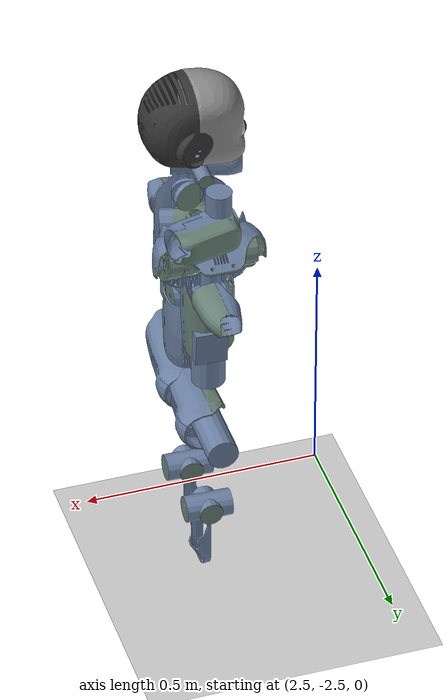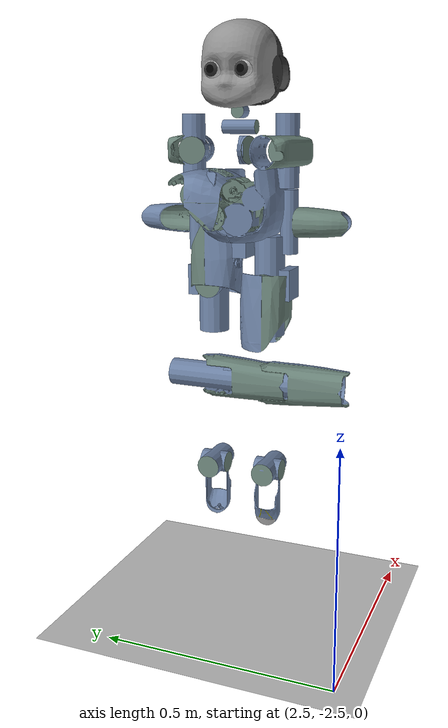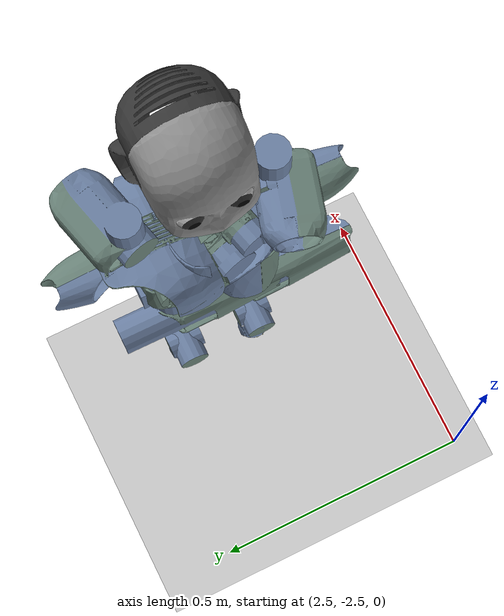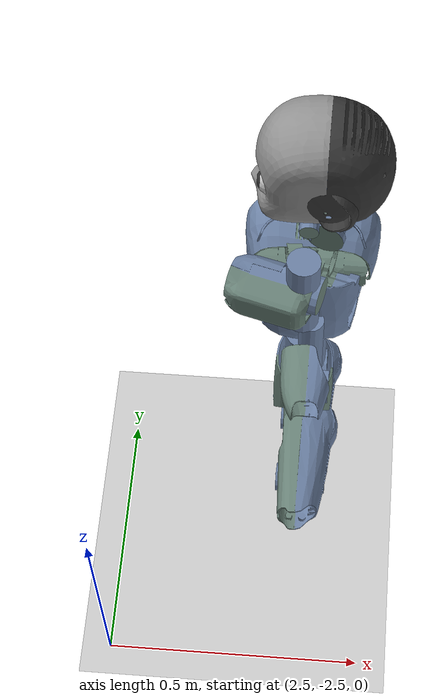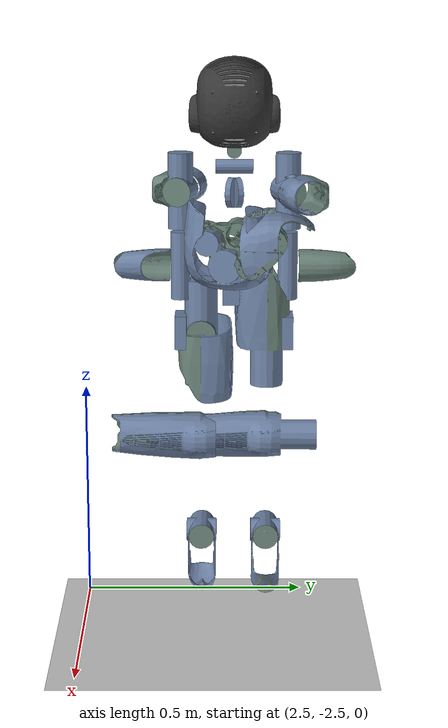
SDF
<sdf version="1.6">
 <world name="default">
  <model name="ground_plane">
   <static>1</static>
   <link name="link">
    <collision name="collision">
     <geometry><plane><normal>0 0 1</normal><size>100 100</size></plane></geometry>
     <surface><friction><ode><mu>100</mu><mu2>50</mu2></ode></friction></surface>
    </collision>
    <visual name="visual">
     <cast_shadows>0</cast_shadows>
     <geometry><plane><normal>0 0 1</normal><size>100 100</size></plane></geometry>
     <material>
      <script><uri>file://media/materials/scripts/gazebo.material</uri><name>Gazebo/Grey</name></script>
     </material>
    </visual>
   </link>
  </model>
  <model name="iCub_0">
   <pose>2.85996 -2.16202 0.840918 -2e-06 -0.008142 -0.01028</pose>
   <link name="root_link">
    <inertial>
     <mass>4.72</mass>
     <inertia><ixx>0.01</ixx><ixy>0</ixy><ixz>0</ixz><iyy>0.01</iyy><iyz>0</iyz><izz>0.01</izz></inertia>
    </inertial>
    <collision name="root_link_collision">
     <geometry>
      <mesh><scale>1 1 1</scale><uri>model://icub/meshes/collision/icub_simple_collision_root_link.dae</uri></mesh>
     </geometry>
    </collision>
    <visual name="root_link_visual">
     <geometry><mesh><scale>1 1 1</scale><uri>model://icub/meshes/visual/icub_root_link.dae</uri></mesh></geometry>
    </visual>
   </link>
   <link name="l_hip_1">
    <pose>0 -0.0681 -0.1199 3e-06 1.57079 3.14159</pose>
    <inertial>
     <pose>0 -0.0782 0 0 -0 0</pose>
     <mass>0.754</mass>
     <inertia>
      <ixx>0.01</ixx>
      <ixy>2.059e-06</ixy>
      <ixz>1.451e-06</ixz>
      <iyy>0.01</iyy>
      <iyz>1.545e-06</iyz>
      <izz>0.01</izz>
     </inertia>
    </inertial>
    <collision name="l_hip_1_collision">
     <pose>0 0 0 -0.785403 1.57079 -2.35619</pose>
     <geometry>
      <mesh><scale>1 1 1</scale><uri>model://icub/meshes/collision/icub_simple_collision_l_hip_1.dae</uri></mesh>
     </geometry>
    </collision>
    <visual name="l_hip_1_visual">
     <pose>0 0 0 -0.785403 1.57079 -2.35619</pose>
     <geometry><mesh><scale>1 1 1</scale><uri>model://icub/meshes/visual/icub_l_hip_1.dae</uri></mesh></geometry>
    </visual>
   </link>
   <joint name="l_hip_pitch" type="revolute">
    <child>l_hip_1</child>
    <parent>root_link</parent>
    <axis>
     <xyz>3e-06 1 0</xyz>
     <limit><lower>-0.767945</lower><upper>2.30383</upper><effort>84</effort><velocity>100</velocity></limit>
     <dynamics>
      <damping>1</damping>
      <friction>0</friction>
      <spring_reference>0</spring_reference>
      <spring_stiffness>0</spring_stiffness>
     </dynamics>
     <use_parent_model_frame>1</use_parent_model_frame>
    </axis>
   </joint>
   <link name="l_hip_2">
    <pose>0 -0.0681 -0.1199 3.14159 -7e-06 3.14159</pose>
    <inertial>
     <pose>0 0 0.03045 0 -0 0</pose>
     <mass>0.526</mass>
     <inertia>
      <ixx>0.01</ixx>
      <ixy>-7.4e-08</ixy>
      <ixz>1.0835e-05</ixz>
      <iyy>0.01</iyy>
      <iyz>-6.2e-08</iyz>
      <izz>0.01</izz>
     </inertia>
    </inertial>
    <collision name="l_hip_2_collision">
     <pose>0 0 0 0.785363 -1.57079 2.35623</pose>
     <geometry>
      <mesh><scale>1 1 1</scale><uri>model://icub/meshes/collision/icub_simple_collision_l_hip_2.dae</uri></mesh>
     </geometry>
    </collision>
    <visual name="l_hip_2_visual">
     <pose>0 0 0 0.785363 -1.57079 2.35623</pose>
     <geometry><mesh><scale>1 1 1</scale><uri>model://icub/meshes/visual/icub_l_hip_2.dae</uri></mesh></geometry>
    </visual>
   </link>
   <joint name="l_hip_roll" type="revolute">
    <child>l_hip_2</child>
    <parent>l_hip_1</parent>
    <axis>
     <xyz>-1 3e-06 7e-06</xyz>
     <limit><lower>-0.296706</lower><upper>2.07694</upper><effort>84</effort><velocity>100</velocity></limit>
     <dynamics>
      <damping>1</damping>
      <friction>0</friction>
      <spring_reference>0</spring_reference>
      <spring_stiffness>0</spring_stiffness>
     </dynamics>
     <use_parent_model_frame>1</use_parent_model_frame>
    </axis>
   </joint>
   <link name="l_hip_3">
    <pose>-0 -0.0681 -0.1864 3.14159 -7e-06 3.14159</pose>
    <inertial>
     <mass>0.1</mass>
     <inertia><ixx>0.01</ixx><ixy>0</ixy><ixz>0</ixz><iyy>0.01</iyy><iyz>0</iyz><izz>0.01</izz></inertia>
    </inertial>
   </link>
   <joint name="l_leg_ft_sensor" type="revolute">
    <child>l_hip_3</child>
    <parent>l_hip_2</parent>
    <axis>
     <xyz>0 0 0</xyz>
     <limit><lower>0</lower><upper>0</upper><effort>0</effort><velocity>0</velocity></limit>
     <dynamics><spring_reference>0</spring_reference><spring_stiffness>0</spring_stiffness></dynamics>
     <use_parent_model_frame>1</use_parent_model_frame>
    </axis>
    <sensor name="left_leg_ft" type="force_torque">
     <always_on>1</always_on>
     <update_rate>100</update_rate>
     <plugin name="left_leg_ft_plugin" filename="libgazebo_yarp_forcetorque.so">
      <yarpConfigurationFile>model://icub/conf/FT/gazebo_icub_left_leg_ft.ini</yarpConfigurationFile>
     </plugin>
    </sensor>
   </joint>
   <link name="l_upper_leg">
    <pose>0 -0.0681 -0.1199 1.57079 -7e-06 3.14159</pose>
    <inertial>
     <pose>0.00144 -0.15943 -0.00039 0 -0 0</pose>
     <mass>2.175</mass>
     <inertia>
      <ixx>0.01</ixx>
      <ixy>-6.726e-05</ixy>
      <ixz>2.267e-06</ixz>
      <iyy>0.01</iyy>
      <iyz>3.63726e-05</iyz>
      <izz>0.01</izz>
     </inertia>
    </inertial>
    <collision name="l_upper_leg_collision">
     <pose>0 0 0 -2.67797 1.57079 -1.10716</pose>
     <geometry>
      <mesh><scale>1 1 1</scale><uri>model://icub/meshes/collision/icub_simple_collision_l_thigh.dae</uri></mesh>
     </geometry>
    </collision>
    <visual name="l_upper_leg_visual">
     <pose>0 0 0 -2.67797 1.57079 -1.10716</pose>
     <geometry><mesh><scale>1 1 1</scale><uri>model://icub/meshes/visual/icub_l_thigh.dae</uri></mesh></geometry>
    </visual>
   </link>
   <joint name="l_hip_yaw" type="revolute">
    <child>l_upper_leg</child>
    <parent>l_hip_3</parent>
    <axis>
     <xyz>7e-06 -6e-06 1</xyz>
     <limit><lower>-1.37881</lower><upper>1.37881</upper><effort>40</effort><velocity>100</velocity></limit>
     <dynamics>
      <damping>1</damping>
      <friction>0</friction>
      <spring_reference>0</spring_reference>
      <spring_stiffness>0</spring_stiffness>
     </dynamics>
     <use_parent_model_frame>1</use_parent_model_frame>
    </axis>
   </joint>
   <link name="l_lower_leg">
    <pose>-2e-06 -0.068099 -0.3435 2.09198 -1.57078 -0.521189</pose>
    <inertial>
     <pose>-0.1071 0.00182 0.00211 0 -0 0</pose>
     <mass>1.264</mass>
     <inertia>
      <ixx>0.01</ixx>
      <ixy>-0.000185699</ixy>
      <ixz>-6.3147e-05</ixz>
      <iyy>0.01</iyy>
      <iyz>7.86e-07</iyz>
      <izz>0.01</izz>
     </inertia>
    </inertial>
    <collision name="l_lower_leg_collision">
     <pose>0 0 0 -3.14159 -0 1.5708</pose>
     <geometry>
      <mesh><scale>1 1 1</scale><uri>model://icub/meshes/collision/icub_simple_collision_l_shank.dae</uri></mesh>
     </geometry>
    </collision>
    <visual name="l_lower_leg_visual">
     <pose>0 0 0 -3.14159 -0 1.5708</pose>
     <geometry><mesh><scale>1 1 1</scale><uri>model://icub/meshes/visual/icub_l_shank.dae</uri></mesh></geometry>
    </visual>
   </link>
   <joint name="l_knee" type="revolute">
    <child>l_lower_leg</child>
    <parent>l_upper_leg</parent>
    <axis>
     <xyz>5e-06 1 6e-06</xyz>
     <limit><lower>-2.18166</lower><upper>0.401426</upper><effort>30</effort><velocity>100</velocity></limit>
     <dynamics>
      <damping>1</damping>
      <friction>0</friction>
      <spring_reference>0</spring_reference>
      <spring_stiffness>0</spring_stiffness>
     </dynamics>
     <use_parent_model_frame>1</use_parent_model_frame>
    </axis>
   </joint>
   <link name="l_ankle_1">
    <pose>-4e-06 -0.068097 -0.5565 0.52118 -1.57078 -0.521189</pose>
    <inertial>
     <pose>-0.0054 0.00163 0.0172 0 -0 0</pose>
     <mass>0.746</mass>
     <inertia>
      <ixx>0.01</ixx>
      <ixy>-7.081e-06</ixy>
      <ixz>4.1421e-05</ixz>
      <iyy>0.01</iyy>
      <iyz>2.0817e-05</iyz>
      <izz>0.01</izz>
     </inertia>
    </inertial>
    <collision name="l_ankle_1_collision">
     <pose>0 -0 0 1.5708 -0 0</pose>
     <geometry>
      <mesh><scale>1 1 1</scale><uri>model://icub/meshes/collision/icub_simple_collision_l_ankle_1.dae</uri></mesh>
     </geometry>
    </collision>
    <visual name="l_ankle_1_visual">
     <pose>0 -0 0 1.5708 -0 0</pose>
     <geometry><mesh><scale>1 1 1</scale><uri>model://icub/meshes/visual/icub_l_ankle_1.dae</uri></mesh></geometry>
    </visual>
   </link>
   <joint name="l_ankle_pitch" type="revolute">
    <child>l_ankle_1</child>
    <parent>l_lower_leg</parent>
    <axis>
     <xyz>-9e-06 -1 -6e-06</xyz>
     <limit><lower>-0.733038</lower><upper>0.366519</upper><effort>24</effort><velocity>100</velocity></limit>
     <dynamics>
      <damping>1</damping>
      <friction>0</friction>
      <spring_reference>0</spring_reference>
      <spring_stiffness>0</spring_stiffness>
     </dynamics>
     <use_parent_model_frame>1</use_parent_model_frame>
    </axis>
   </joint>
   <link name="l_ankle_2">
    <pose>-4e-06 -0.068097 -0.5565 3.14159 -7e-06 3.14158</pose>
    <inertial>
     <pose>0 0 0.037 0 -0 0</pose>
     <mass>0.2675</mass>
     <inertia><ixx>0.01</ixx><ixy>0</ixy><ixz>0</ixz><iyy>0.01</iyy><iyz>0</iyz><izz>0.01</izz></inertia>
    </inertial>
   </link>
   <joint name="l_ankle_roll" type="revolute">
    <child>l_ankle_2</child>
    <parent>l_ankle_1</parent>
    <axis>
     <xyz>-1 9e-06 7e-06</xyz>
     <limit><lower>-0.418879</lower><upper>0.418879</upper><effort>11</effort><velocity>100</velocity></limit>
     <dynamics>
      <damping>1</damping>
      <friction>0</friction>
      <spring_reference>0</spring_reference>
      <spring_stiffness>0</spring_stiffness>
     </dynamics>
     <use_parent_model_frame>1</use_parent_model_frame>
    </axis>
   </joint>
   <link name="l_foot">
    <pose>-4e-06 -0.068097 -0.5935 3.14159 -7e-06 3.14158</pose>
    <inertial>
     <pose>0.024069 -0.000614 -0.028415 0 -0 0</pose>
     <mass>0.5935</mass>
     <inertia>
      <ixx>0.01</ixx>
      <ixy>-4.51893e-06</ixy>
      <ixz>0.000567785</ixz>
      <iyy>0.01</iyy>
      <iyz>-6.62361e-07</iyz>
      <izz>0.01</izz>
     </inertia>
    </inertial>
    <collision name="l_foot_collision">
     <pose>0.03 0 -0.01 0 -0 0</pose>
     <geometry><box><size>0.15 0.07 0.03</size></box></geometry>
     <max_contacts>4</max_contacts>
     <surface>
      <contact>
       <ode>
        <soft_erp>0.2</soft_erp>
        <soft_cfm>0</soft_cfm>
        <kp>1.8e+07</kp>
        <kd>100</kd>
        <max_vel>100</max_vel>
        <min_depth>0.0001</min_depth>
       </ode>
      </contact>
      <friction><ode><mu>1</mu><mu2>1</mu2><fdir1>0 0 0</fdir1><slip1>0</slip1><slip2>0</slip2></ode></friction>
      <bounce><restitution_coefficient>0</restitution_coefficient><threshold>100000</threshold></bounce>
     </surface>
    </collision>
    <visual name="l_foot_visual">
     <pose>0 -0 -0.037 -0.785403 1.57079 -0.785403</pose>
     <geometry><mesh><scale>1 1 1</scale><uri>model://icub/meshes/visual/icub_l_foot.dae</uri></mesh></geometry>
    </visual>
   </link>
   <joint name="l_foot_ft_sensor" type="revolute">
    <child>l_foot</child>
    <parent>l_ankle_2</parent>
    <axis>
     <xyz>0 0 0</xyz>
     <limit><lower>0</lower><upper>0</upper><effort>0</effort><velocity>0</velocity></limit>
     <dynamics><spring_reference>0</spring_reference><spring_stiffness>0</spring_stiffness></dynamics>
     <use_parent_model_frame>1</use_parent_model_frame>
    </axis>
    <sensor name="left_foot_ft" type="force_torque">
     <always_on>1</always_on>
     <update_rate>100</update_rate>
     <plugin name="left_foot_ft_plugin" filename="libgazebo_yarp_forcetorque.so">
      <yarpConfigurationFile>model://icub/conf/FT/gazebo_icub_left_foot_ft.ini</yarpConfigurationFile>
     </plugin>
    </sensor>
   </joint>
   <link name="r_hip_1">
    <pose>0 0.0681 -0.1199 3.14159 1.57079 -3.14159</pose>
    <inertial>
     <pose>0 -0.0782 0 0 -0 0</pose>
     <mass>0.754</mass>
     <inertia><ixx>0.01</ixx><ixy>0</ixy><ixz>0</ixz><iyy>0.01</iyy><iyz>0</iyz><izz>0.01</izz></inertia>
    </inertial>
    <collision name="r_hip_1_collision">
     <pose>0 0 0 1.76819 -1.57079 2.76109</pose>
     <geometry>
      <mesh><scale>1 1 1</scale><uri>model://icub/meshes/collision/icub_simple_collision_r_hip_1.dae</uri></mesh>
     </geometry>
    </collision>
    <visual name="r_hip_1_visual">
     <pose>0 0 0 1.76819 -1.57079 2.76109</pose>
     <geometry><mesh><scale>1 1 1</scale><uri>model://icub/meshes/visual/icub_r_hip_1.dae</uri></mesh></geometry>
    </visual>
   </link>
   <joint name="r_hip_pitch" type="revolute">
    <child>r_hip_1</child>
    <parent>root_link</parent>
    <axis>
     <xyz>0 1 0</xyz>
     <limit><lower>-0.767945</lower><upper>2.30383</upper><effort>84</effort><velocity>100</velocity></limit>
     <dynamics>
      <damping>1</damping>
      <friction>0</friction>
      <spring_reference>0</spring_reference>
      <spring_stiffness>0</spring_stiffness>
     </dynamics>
     <use_parent_model_frame>1</use_parent_model_frame>
    </axis>
   </joint>
   <link name="r_hip_2">
    <pose>0 0.0681 -0.1199 -3.14159 -7e-06 -3.14159</pose>
    <inertial>
     <pose>0 0 0.03045 0 -0 0</pose>
     <mass>0.526</mass>
     <inertia><ixx>0.01</ixx><ixy>0</ixy><ixz>0</ixz><iyy>0.01</iyy><iyz>0</iyz><izz>0.01</izz></inertia>
    </inertial>
    <collision name="r_hip_2_collision">
     <pose>0 0 0 -2.35627 -1.57079 2.35627</pose>
     <geometry>
      <mesh><scale>1 1 1</scale><uri>model://icub/meshes/collision/icub_simple_collision_r_hip_2.dae</uri></mesh>
     </geometry>
    </collision>
    <visual name="r_hip_2_visual">
     <pose>0 0 0 -2.35627 -1.57079 2.35627</pose>
     <geometry><mesh><scale>1 1 1</scale><uri>model://icub/meshes/visual/icub_r_hip_2.dae</uri></mesh></geometry>
    </visual>
   </link>
   <joint name="r_hip_roll" type="revolute">
    <child>r_hip_2</child>
    <parent>r_hip_1</parent>
    <axis>
     <xyz>1 0 -7e-06</xyz>
     <limit><lower>-0.296706</lower><upper>2.07694</upper><effort>84</effort><velocity>100</velocity></limit>
     <dynamics>
      <damping>1</damping>
      <friction>0</friction>
      <spring_reference>0</spring_reference>
      <spring_stiffness>0</spring_stiffness>
     </dynamics>
     <use_parent_model_frame>1</use_parent_model_frame>
    </axis>
   </joint>
   <link name="r_hip_3">
    <pose>-0 0.0681 -0.1864 -3.14159 -7e-06 -3.14159</pose>
    <inertial>
     <mass>0.1</mass>
     <inertia><ixx>0.01</ixx><ixy>0</ixy><ixz>0</ixz><iyy>0.01</iyy><iyz>0</iyz><izz>0.01</izz></inertia>
    </inertial>
   </link>
   <joint name="r_leg_ft_sensor" type="revolute">
    <child>r_hip_3</child>
    <parent>r_hip_2</parent>
    <axis>
     <xyz>0 0 0</xyz>
     <limit><lower>0</lower><upper>0</upper><effort>0</effort><velocity>0</velocity></limit>
     <dynamics><spring_reference>0</spring_reference><spring_stiffness>0</spring_stiffness></dynamics>
     <use_parent_model_frame>1</use_parent_model_frame>
    </axis>
    <sensor name="right_leg_ft" type="force_torque">
     <always_on>1</always_on>
     <update_rate>100</update_rate>
     <plugin name="right_leg_ft_plugin" filename="libgazebo_yarp_forcetorque.so">
      <yarpConfigurationFile>model://icub/conf/FT/gazebo_icub_right_leg_ft.ini</yarpConfigurationFile>
     </plugin>
    </sensor>
   </joint>
   <link name="r_upper_leg">
    <pose>0 0.0681 -0.1199 1.57079 -7e-06 3.14159</pose>
    <inertial>
     <pose>0.00144 -0.15943 0.00039 0 -0 0</pose>
     <mass>2.175</mass>
     <inertia>
      <ixx>0.01</ixx>
      <ixy>0</ixy>
      <ixz>0</ixz>
      <iyy>0.01</iyy>
      <iyz>-2.71051e-20</iyz>
      <izz>0.01</izz>
     </inertia>
    </inertial>
    <collision name="r_upper_leg_collision">
     <pose>0 0 0 1.57087 -1.57079 -7.3e-05</pose>
     <geometry>
      <mesh><scale>1 1 1</scale><uri>model://icub/meshes/collision/icub_simple_collision_r_thigh.dae</uri></mesh>
     </geometry>
    </collision>
    <visual name="r_upper_leg_visual">
     <pose>0 0 0 1.57087 -1.57079 -7.3e-05</pose>
     <geometry><mesh><scale>1 1 1</scale><uri>model://icub/meshes/visual/icub_r_thigh.dae</uri></mesh></geometry>
    </visual>
   </link>
   <joint name="r_hip_yaw" type="revolute">
    <child>r_upper_leg</child>
    <parent>r_hip_3</parent>
    <axis>
     <xyz>-7e-06 4e-06 -1</xyz>
     <limit><lower>-1.37881</lower><upper>1.37881</upper><effort>40</effort><velocity>100</velocity></limit>
     <dynamics>
      <damping>1</damping>
      <friction>0</friction>
      <spring_reference>0</spring_reference>
      <spring_stiffness>0</spring_stiffness>
     </dynamics>
     <use_parent_model_frame>1</use_parent_model_frame>
    </axis>
   </joint>
   <link name="r_lower_leg">
    <pose>-2e-06 0.068101 -0.3435 1.89254 -1.57078 -0.321751</pose>
    <inertial>
     <pose>-0.1071 0.00182 -0.00211 0 -0 0</pose>
     <mass>1.264</mass>
     <inertia>
      <ixx>0.01</ixx>
      <ixy>5.42101e-20</ixy>
      <ixz>-5.42101e-20</ixz>
      <iyy>0.01</iyy>
      <iyz>8.47033e-22</iyz>
      <izz>0.01</izz>
     </inertia>
    </inertial>
    <collision name="r_lower_leg_collision">
     <pose>0 0 -0 3.14159 -0 1.5708</pose>
     <geometry>
      <mesh><scale>1 1 1</scale><uri>model://icub/meshes/collision/icub_simple_collision_r_shank.dae</uri></mesh>
     </geometry>
    </collision>
    <visual name="r_lower_leg_visual">
     <pose>0 0 -0 3.14159 -0 1.5708</pose>
     <geometry><mesh><scale>1 1 1</scale><uri>model://icub/meshes/visual/icub_r_shank.dae</uri></mesh></geometry>
    </visual>
   </link>
   <joint name="r_knee" type="revolute">
    <child>r_lower_leg</child>
    <parent>r_upper_leg</parent>
    <axis>
     <xyz>3e-06 1 4e-06</xyz>
     <limit><lower>-2.18166</lower><upper>0.401426</upper><effort>30</effort><velocity>100</velocity></limit>
     <dynamics>
      <damping>1</damping>
      <friction>0</friction>
      <spring_reference>0</spring_reference>
      <spring_stiffness>0</spring_stiffness>
     </dynamics>
     <use_parent_model_frame>1</use_parent_model_frame>
    </axis>
   </joint>
   <link name="r_ankle_1">
    <pose>-4e-06 0.068102 -0.5565 -2.81984 -1.57078 -0.321751</pose>
    <inertial>
     <pose>-0.0054 0.00163 -0.0172 0 -0 0</pose>
     <mass>0.746</mass>
     <inertia>
      <ixx>0.01</ixx>
      <ixy>-1.69407e-21</ixy>
      <ixz>1.35525e-20</ixz>
      <iyy>0.01</iyy>
      <iyz>3.38813e-21</iyz>
      <izz>0.01</izz>
     </inertia>
    </inertial>
    <collision name="r_ankle_1_collision">
     <pose>0 -0 -0 -1.5708 -0 0</pose>
     <geometry>
      <mesh><scale>1 1 1</scale><uri>model://icub/meshes/collision/icub_simple_collision_r_ankle_1.dae</uri></mesh>
     </geometry>
    </collision>
    <visual name="r_ankle_1_visual">
     <pose>0 -0 -0 -1.5708 -0 0</pose>
     <geometry><mesh><scale>1 1 1</scale><uri>model://icub/meshes/visual/icub_r_ankle_1.dae</uri></mesh></geometry>
    </visual>
   </link>
   <joint name="r_ankle_pitch" type="revolute">
    <child>r_ankle_1</child>
    <parent>r_lower_leg</parent>
    <axis>
     <xyz>1e-06 -1 -4e-06</xyz>
     <limit><lower>-0.733038</lower><upper>0.366519</upper><effort>24</effort><velocity>100</velocity></limit>
     <dynamics>
      <damping>1</damping>
      <friction>0</friction>
      <spring_reference>0</spring_reference>
      <spring_stiffness>0</spring_stiffness>
     </dynamics>
     <use_parent_model_frame>1</use_parent_model_frame>
    </axis>
   </joint>
   <link name="r_ankle_2">
    <pose>-4e-06 0.068102 -0.5565 3.14159 -1.4e-05 -3.14159</pose>
    <inertial>
     <pose>0 0 0.037 0 -0 0</pose>
     <mass>0.2675</mass>
     <inertia><ixx>0.01</ixx><ixy>0</ixy><ixz>0</ixz><iyy>0.01</iyy><iyz>0</iyz><izz>0.01</izz></inertia>
    </inertial>
   </link>
   <joint name="r_ankle_roll" type="revolute">
    <child>r_ankle_2</child>
    <parent>r_ankle_1</parent>
    <axis>
     <xyz>1 3e-06 -1.4e-05</xyz>
     <limit><lower>-0.418879</lower><upper>0.418879</upper><effort>11</effort><velocity>100</velocity></limit>
     <dynamics>
      <damping>1</damping>
      <friction>0</friction>
      <spring_reference>0</spring_reference>
      <spring_stiffness>0</spring_stiffness>
     </dynamics>
     <use_parent_model_frame>1</use_parent_model_frame>
    </axis>
   </joint>
   <link name="r_foot">
    <pose>-5e-06 0.068102 -0.5935 3.14159 -1.4e-05 -3.14159</pose>
    <inertial>
     <pose>0.024069 0.000614 -0.028415 0 -0 0</pose>
     <mass>0.5935</mass>
     <inertia>
      <ixx>0.01</ixx>
      <ixy>4.51893e-06</ixy>
      <ixz>0.000567784</ixz>
      <iyy>0.01</iyy>
      <iyz>6.62535e-07</iyz>
      <izz>0.01</izz>
     </inertia>
    </inertial>
    <collision name="r_foot_collision">
     <pose>0.03 0 -0.01 0 -0 0</pose>
     <geometry><box><size>0.15 0.07 0.03</size></box></geometry>
     <max_contacts>4</max_contacts>
     <surface>
      <contact>
       <ode>
        <soft_erp>0.2</soft_erp>
        <soft_cfm>0</soft_cfm>
        <kp>1.8e+07</kp>
        <kd>100</kd>
        <max_vel>100</max_vel>
        <min_depth>0.0001</min_depth>
       </ode>
      </contact>
      <friction><ode><mu>1</mu><mu2>1</mu2><fdir1>0 0 0</fdir1><slip1>0</slip1><slip2>0</slip2></ode></friction>
      <bounce><restitution_coefficient>0</restitution_coefficient><threshold>100000</threshold></bounce>
     </surface>
    </collision>
    <visual name="r_foot_visual">
     <pose>0 0 -0.037 -2.81983 1.57079 0.321763</pose>
     <geometry><mesh><scale>1 1 1</scale><uri>model://icub/meshes/visual/icub_r_foot.dae</uri></mesh></geometry>
    </visual>
   </link>
   <joint name="r_foot_ft_sensor" type="revolute">
    <child>r_foot</child>
    <parent>r_ankle_2</parent>
    <axis>
     <xyz>0 0 0</xyz>
     <limit><lower>0</lower><upper>0</upper><effort>0</effort><velocity>0</velocity></limit>
     <dynamics><spring_reference>0</spring_reference><spring_stiffness>0</spring_stiffness></dynamics>
     <use_parent_model_frame>1</use_parent_model_frame>
    </axis>
    <sensor name="right_foot_ft" type="force_torque">
     <always_on>1</always_on>
     <update_rate>100</update_rate>
     <plugin name="right_foot_ft_plugin" filename="libgazebo_yarp_forcetorque.so">
      <yarpConfigurationFile>model://icub/conf/FT/gazebo_icub_right_foot_ft.ini</yarpConfigurationFile>
     </plugin>
    </sensor>
   </joint>
   <link name="torso_1">
    <pose>0 0 0 3.14159 -1.57079 -3e-06</pose>
    <inertial>
     <mass>0.1</mass>
     <inertia>
      <ixx>0.01</ixx>
      <ixy>-4.263e-05</ixy>
      <ixz>-3.889e-08</ixz>
      <iyy>0.01</iyy>
      <iyz>0</iyz>
      <izz>0.01</izz>
     </inertia>
    </inertial>
    <collision name="torso_1_collision">
     <pose>0 0 0 -1.5708 0 0</pose>
     <geometry>
      <mesh><scale>1 1 1</scale><uri>model://icub/meshes/collision/icub_simple_collision_lap_belt_1.dae</uri></mesh>
     </geometry>
    </collision>
    <visual name="torso_1_visual">
     <pose>0 0 0 -1.5708 0 0</pose>
     <geometry>
      <mesh><scale>1 1 1</scale><uri>model://icub/meshes/visual/icub_lap_belt_1.dae</uri></mesh>
     </geometry>
    </visual>
   </link>
   <joint name="torso_pitch" type="revolute">
    <child>torso_1</child>
    <parent>root_link</parent>
    <axis>
     <xyz>-3e-06 -1 0</xyz>
     <limit><lower>-0.383972</lower><upper>1.46608</upper><effort>36</effort><velocity>100</velocity></limit>
     <dynamics>
      <damping>1</damping>
      <friction>0</friction>
      <spring_reference>0</spring_reference>
      <spring_stiffness>0</spring_stiffness>
     </dynamics>
     <use_parent_model_frame>1</use_parent_model_frame>
    </axis>
   </joint>
   <link name="torso_2">
    <pose>0 -0 0.032 -3.14159 4e-06 1.57079</pose>
    <inertial>
     <mass>0.1</mass>
     <inertia>
      <ixx>0.01</ixx>
      <ixy>-1.923e-06</ixy>
      <ixz>5.095e-05</ixz>
      <iyy>0.01</iyy>
      <iyz>-3.849e-07</iyz>
      <izz>0.01</izz>
     </inertia>
    </inertial>
   </link>
   <joint name="torso_roll" type="revolute">
    <child>torso_2</child>
    <parent>torso_1</parent>
    <axis>
     <xyz>1 -3e-06 -7e-06</xyz>
     <limit><lower>-0.680678</lower><upper>0.680678</upper><effort>80</effort><velocity>100</velocity></limit>
     <dynamics>
      <damping>1</damping>
      <friction>0</friction>
      <spring_reference>0</spring_reference>
      <spring_stiffness>0</spring_stiffness>
     </dynamics>
     <use_parent_model_frame>1</use_parent_model_frame>
    </axis>
   </joint>
   <link name="chest">
    <pose>-0.0055 0 0.032 1.5708 -7e-06 -3.14159</pose>
    <inertial>
     <pose>0.002229 0.075 -0 0 -0 0</pose>
     <mass>4.81</mass>
     <inertia>
      <ixx>0.07472</ixx>
      <ixy>-3.6e-06</ixy>
      <ixz>-4.705e-05</ixz>
      <iyy>0.08145</iyy>
      <iyz>0.004567</iyz>
      <izz>0.01306</izz>
     </inertia>
    </inertial>
    <collision name="chest_collision">
     <pose>-0.0055 -0 -0 -1.10717 -1.57079 2.67798</pose>
     <geometry>
      <mesh><scale>1 1 1</scale><uri>model://icub/meshes/collision/icub_simple_collision_chest.dae</uri></mesh>
     </geometry>
    </collision>
    <visual name="chest_visual">
     <pose>-0.0055 -0 -0 -1.10717 -1.57079 2.67798</pose>
     <geometry><mesh><scale>1 1 1</scale><uri>model://icub/meshes/visual/icub_chest.dae</uri></mesh></geometry>
    </visual>
   </link>
   <joint name="torso_yaw" type="revolute">
    <child>chest</child>
    <parent>torso_2</parent>
    <axis>
     <xyz>-7e-06 0 -1</xyz>
     <limit><lower>-1.02974</lower><upper>1.02974</upper><effort>80</effort><velocity>100</velocity></limit>
     <dynamics>
      <damping>1</damping>
      <friction>0</friction>
      <spring_reference>0</spring_reference>
      <spring_stiffness>0</spring_stiffness>
     </dynamics>
     <use_parent_model_frame>1</use_parent_model_frame>
    </axis>
   </joint>
   <link name="l_shoulder_1">
    <pose>-0.010749 -0.11026 0.1753 -0.261794 -1.57079 -1e-06</pose>
    <inertial>
     <pose>-5e-06 0.0187 -0.00119 0 -0 0</pose>
     <mass>0.189</mass>
     <inertia>
      <ixx>0.01</ixx>
      <ixy>9e-09</ixy>
      <ixz>0</ixz>
      <iyy>0.01</iyy>
      <iyz>-1.7e-08</iyz>
      <izz>0.01</izz>
     </inertia>
    </inertial>
    <collision name="l_shoulder_1_collision">
     <pose>0 0.109285 -0.005211 -0.301063 1.57079 -1.87186</pose>
     <geometry>
      <mesh>
       <scale>1 1 1</scale>
       <uri>model://icub/meshes/collision/icub_simple_collision_l_shoulder_1.dae</uri>
      </mesh>
     </geometry>
    </collision>
    <visual name="l_shoulder_1_visual">
     <pose>0 0.109285 -0.005211 -0.301063 1.57079 -1.87186</pose>
     <geometry>
      <mesh><scale>1 1 1</scale><uri>model://icub/meshes/visual/icub_l_shoulder_1.dae</uri></mesh>
     </geometry>
    </visual>
   </link>
   <joint name="l_shoulder_pitch" type="revolute">
    <child>l_shoulder_1</child>
    <parent>chest</parent>
    <axis>
     <xyz>-0.258815 -0.965927 3e-06</xyz>
     <limit><lower>-1.65806</lower><upper>0.0872665</upper><effort>84</effort><velocity>100</velocity></limit>
     <dynamics>
      <damping>1</damping>
      <friction>0</friction>
      <spring_reference>0</spring_reference>
      <spring_stiffness>0</spring_stiffness>
     </dynamics>
     <use_parent_model_frame>1</use_parent_model_frame>
    </axis>
   </joint>
   <link name="l_shoulder_2">
    <pose>-0.010749 -0.11026 0.1753 3.14159 1e-06 -1.83259</pose>
    <inertial>
     <pose>9.4e-05 -0.00627 0.0166 0 -0 0</pose>
     <mass>0.179</mass>
     <inertia>
      <ixx>0.01</ixx>
      <ixy>4.66e-07</ixy>
      <ixz>3.65e-07</ixz>
      <iyy>0.01</iyy>
      <iyz>-2.0524e-05</iyz>
      <izz>0.01</izz>
     </inertia>
    </inertial>
    <collision name="l_shoulder_2_collision">
     <pose>-0.001545 -0.005211 -0 -2.14033 1.57079 -0.569533</pose>
     <geometry>
      <mesh>
       <scale>1 1 1</scale>
       <uri>model://icub/meshes/collision/icub_simple_collision_l_shoulder_2.dae</uri>
      </mesh>
     </geometry>
    </collision>
    <visual name="l_shoulder_2_visual">
     <pose>-0.001545 -0.005211 -0 -2.14033 1.57079 -0.569533</pose>
     <geometry>
      <mesh><scale>1 1 1</scale><uri>model://icub/meshes/visual/icub_l_shoulder_2.dae</uri></mesh>
     </geometry>
    </visual>
   </link>
   <joint name="l_shoulder_roll" type="revolute">
    <child>l_shoulder_2</child>
    <parent>l_shoulder_1</parent>
    <axis>
     <xyz>-0.965927 0.258815 7e-06</xyz>
     <limit><lower>0</lower><upper>2.80649</upper><effort>84</effort><velocity>100</velocity></limit>
     <dynamics>
      <damping>1</damping>
      <friction>0</friction>
      <spring_reference>0</spring_reference>
      <spring_stiffness>0</spring_stiffness>
     </dynamics>
     <use_parent_model_frame>1</use_parent_model_frame>
    </axis>
   </joint>
   <link name="l_shoulder_3">
    <pose>-0.010749 -0.11026 0.1753 3.14159 -7e-06 -3.14159</pose>
    <inertial>
     <pose>0.005594 9.8e-05 0.050135 0 -0 0</pose>
     <mass>0.156157</mass>
     <inertia>
      <ixx>0.01</ixx>
      <ixy>-5.662e-08</ixy>
      <ixz>-4.3618e-06</ixz>
      <iyy>0.01</iyy>
      <iyz>-7.42844e-07</iyz>
      <izz>0.01</izz>
     </inertia>
    </inertial>
   </link>
   <joint name="l_shoulder_yaw" type="revolute">
    <child>l_shoulder_3</child>
    <parent>l_shoulder_2</parent>
    <axis>
     <xyz>-7e-06 3e-06 -1</xyz>
     <limit><lower>-0.645772</lower><upper>1.74533</upper><effort>34</effort><velocity>100</velocity></limit>
     <dynamics>
      <damping>1</damping>
      <friction>0</friction>
      <spring_reference>0</spring_reference>
      <spring_stiffness>0</spring_stiffness>
     </dynamics>
     <use_parent_model_frame>1</use_parent_model_frame>
    </axis>
   </joint>
   <link name="l_upper_arm">
    <pose>-0.025749 -0.11026 0.1073 3.14159 -7e-06 -3.14159</pose>
    <inertial>
     <pose>-0.000156 -9.9e-05 0.0298 0 -0 0</pose>
     <mass>0.727843</mass>
     <inertia>
      <ixx>0.01</ixx>
      <ixy>-1.08e-06</ixy>
      <ixz>-2.29e-06</ixz>
      <iyy>0.01</iyy>
      <iyz>3.57e-06</iyz>
      <izz>0.01</izz>
     </inertia>
    </inertial>
    <collision name="l_upper_arm_collision">
     <pose>-0.020433 0.000144 -0.068 0 0 -1.309</pose>
     <geometry>
      <mesh><scale>1 1 1</scale><uri>model://icub/meshes/collision/icub_simple_collision_l_arm.dae</uri></mesh>
     </geometry>
    </collision>
    <visual name="l_upper_arm_visual">
     <pose>-0.020433 0.000144 -0.068 0 0 -1.309</pose>
     <geometry><mesh><scale>1 1 1</scale><uri>model://icub/meshes/visual/icub_l_arm.dae</uri></mesh></geometry>
    </visual>
   </link>
   <joint name="l_arm_ft_sensor" type="revolute">
    <child>l_upper_arm</child>
    <parent>l_shoulder_3</parent>
    <axis>
     <xyz>0 0 0</xyz>
     <limit><lower>0</lower><upper>0</upper><effort>0</effort><velocity>0</velocity></limit>
     <dynamics><spring_reference>0</spring_reference><spring_stiffness>0</spring_stiffness></dynamics>
     <use_parent_model_frame>1</use_parent_model_frame>
    </axis>
    <sensor name="left_arm_ft" type="force_torque">
     <always_on>1</always_on>
     <update_rate>100</update_rate>
     <plugin name="left_arm_ft_plugin" filename="libgazebo_yarp_forcetorque.so">
      <yarpConfigurationFile>model://icub/conf/FT/gazebo_icub_left_arm_ft.ini</yarpConfigurationFile>
     </plugin>
    </sensor>
   </joint>
   <link name="l_elbow_1">
    <pose>-0.02575 -0.11026 0.02302 3.14159 -7e-06 -3.14159</pose>
    <inertial>
     <pose>-0.0013 0.00371 -0.00105 0 -0 0</pose>
     <mass>0.1</mass>
     <inertia>
      <ixx>0.01</ixx>
      <ixy>-5.15e-07</ixy>
      <ixz>-4.08e-07</ixz>
      <iyy>0.01</iyy>
      <iyz>-3.71e-07</iyz>
      <izz>0.01</izz>
     </inertia>
    </inertial>
   </link>
   <joint name="l_elbow" type="revolute">
    <child>l_elbow_1</child>
    <parent>l_upper_arm</parent>
    <axis>
     <xyz>-1e-06 1 3e-06</xyz>
     <limit><lower>0.0959931</lower><upper>1.85005</upper><effort>20</effort><velocity>100</velocity></limit>
     <dynamics>
      <damping>1</damping>
      <friction>0</friction>
      <spring_reference>0</spring_reference>
      <spring_stiffness>0</spring_stiffness>
     </dynamics>
     <use_parent_model_frame>1</use_parent_model_frame>
    </axis>
   </joint>
   <link name="l_forearm">
    <pose>-0.01075 -0.11026 0.02302 -1.5708 3e-06 -1.57079</pose>
    <inertial>
     <pose>0.000347 0.066 0.00476 0 -0 0</pose>
     <mass>0.525</mass>
     <inertia>
      <ixx>0.01</ixx>
      <ixy>4.337e-06</ixy>
      <ixz>2.39e-07</ixz>
      <iyy>0.01</iyy>
      <iyz>1.9381e-05</iyz>
      <izz>0.01</izz>
     </inertia>
    </inertial>
    <collision name="l_forearm_collision">
     <pose>-0.000144 -0 0.020433 -2.66395 1.57079 -1.09315</pose>
     <geometry>
      <mesh><scale>1 1 1</scale><uri>model://icub/meshes/collision/icub_simple_collision_l_forearm.dae</uri></mesh>
     </geometry>
    </collision>
    <visual name="l_forearm_visual">
     <pose>-0.000144 -0 0.020433 -2.66395 1.57079 -1.09315</pose>
     <geometry><mesh><scale>1 1 1</scale><uri>model://icub/meshes/visual/icub_l_forearm.dae</uri></mesh></geometry>
    </visual>
   </link>
   <joint name="l_wrist_prosup" type="revolute">
    <child>l_forearm</child>
    <parent>l_elbow_1</parent>
    <axis>
     <xyz>-3e-06 3e-06 -1</xyz>
     <limit><lower>-0.872665</lower><upper>0.872665</upper><effort>0.45</effort><velocity>100</velocity></limit>
     <dynamics>
      <damping>1</damping>
      <friction>0</friction>
      <spring_reference>0</spring_reference>
      <spring_stiffness>0</spring_stiffness>
     </dynamics>
     <use_parent_model_frame>1</use_parent_model_frame>
    </axis>
   </joint>
   <link name="l_wrist_1">
    <pose>-0.01075 -0.110259 -0.11428 -2.7153 1.57079 1.99709</pose>
    <inertial>
     <mass>0.1</mass>
     <inertia><ixx>0.01</ixx><ixy>0</ixy><ixz>0</ixz><iyy>0.01</iyy><iyz>0</iyz><izz>0.01</izz></inertia>
    </inertial>
   </link>
   <joint name="l_wrist_pitch" type="revolute">
    <child>l_wrist_1</child>
    <parent>l_forearm</parent>
    <axis>
     <xyz>1 1e-06 -3e-06</xyz>
     <limit><lower>-1.13446</lower><upper>0.174533</upper><effort>0.65</effort><velocity>100</velocity></limit>
     <dynamics>
      <damping>1</damping>
      <friction>0</friction>
      <spring_reference>0</spring_reference>
      <spring_stiffness>0</spring_stiffness>
     </dynamics>
     <use_parent_model_frame>1</use_parent_model_frame>
    </axis>
   </joint>
   <link name="l_hand">
    <pose>-0.01075 -0.110259 -0.11428 -2.7153 1.57079 1.99709</pose>
    <inertial>
     <pose>0.07023 -0.00805 -0.007 0 -0 0</pose>
     <mass>0.213</mass>
     <inertia>
      <ixx>0.01</ixx>
      <ixy>1.278e-05</ixy>
      <ixz>4.823e-06</ixz>
      <iyy>0.01</iyy>
      <iyz>-1.8188e-05</iyz>
      <izz>0.01</izz>
     </inertia>
    </inertial>
    <collision name="l_hand_collision">
     <pose>-0 0.020433 -0.000144 0 -0 0</pose>
     <geometry>
      <mesh><scale>1 1 1</scale><uri>model://icub/meshes/collision/icub_simple_collision_l_hand.dae</uri></mesh>
     </geometry>
    </collision>
    <visual name="l_hand_visual">
     <pose>-0 0.020433 -0.000144 0 -0 0</pose>
     <geometry><mesh><scale>1 1 1</scale><uri>model://icub/meshes/visual/icub_l_hand.dae</uri></mesh></geometry>
    </visual>
   </link>
   <joint name="l_wrist_yaw" type="revolute">
    <child>l_hand</child>
    <parent>l_wrist_1</parent>
    <axis>
     <xyz>1e-06 -1 -6e-06</xyz>
     <limit><lower>-0.436332</lower><upper>0.436332</upper><effort>0.65</effort><velocity>100</velocity></limit>
     <dynamics>
      <damping>1</damping>
      <friction>0</friction>
      <spring_reference>0</spring_reference>
      <spring_stiffness>0</spring_stiffness>
     </dynamics>
     <use_parent_model_frame>1</use_parent_model_frame>
    </axis>
   </joint>
   <link name="neck_1">
    <pose>-0.007808 0 0.2253 6e-06 -1.57079 -1e-06</pose>
    <inertial>
     <mass>0.1</mass>
     <inertia><ixx>0.01</ixx><ixy>0</ixy><ixz>0</ixz><iyy>0.01</iyy><iyz>0</iyz><izz>0.01</izz></inertia>
    </inertial>
    <collision name="neck_1_collision">
     <pose>-0 0 -0.0055 3.14159 -1.57079 1.5708</pose>
     <geometry>
      <mesh><scale>1 1 1</scale><uri>model://icub/meshes/collision/icub_simple_collision_neck_1.dae</uri></mesh>
     </geometry>
    </collision>
    <visual name="neck_1_visual">
     <pose>-0 0 -0.0055 3.14159 -1.57079 1.5708</pose>
     <geometry><mesh><scale>1 1 1</scale><uri>model://icub/meshes/visual/icub_neck_1.dae</uri></mesh></geometry>
    </visual>
   </link>
   <joint name="neck_pitch" type="revolute">
    <child>neck_1</child>
    <parent>chest</parent>
    <axis>
     <xyz>-5e-06 1 0</xyz>
     <limit><lower>-0.523599</lower><upper>0.383972</upper><effort>20</effort><velocity>100</velocity></limit>
     <dynamics>
      <damping>1</damping>
      <friction>0</friction>
      <spring_reference>0</spring_reference>
      <spring_stiffness>0</spring_stiffness>
     </dynamics>
     <use_parent_model_frame>1</use_parent_model_frame>
    </axis>
    <physics>
     <ode>
      <implicit_spring_damper>1</implicit_spring_damper>
      <cfm_damping>1</cfm_damping>
      <limit><cfm>0</cfm><erp>0.2</erp></limit>
     </ode>
    </physics>
   </joint>
   <link name="neck_2">
    <pose>-0.007808 0 0.2348 -1.5e-05 4e-06 -1.57079</pose>
    <inertial>
     <mass>0.1</mass>
     <inertia><ixx>0.01</ixx><ixy>0</ixy><ixz>0</ixz><iyy>0.01</iyy><iyz>0</iyz><izz>0.01</izz></inertia>
    </inertial>
    <collision name="neck_2_collision">
     <pose>-0 0.0055 0.0235 -3.14157 -1.57079 -1.57082</pose>
     <geometry>
      <mesh><scale>1 1 1</scale><uri>model://icub/meshes/collision/icub_simple_collision_neck_2.dae</uri></mesh>
     </geometry>
    </collision>
    <visual name="neck_2_visual">
     <pose>-0 0.0055 0.0235 -3.14157 -1.57079 -1.57082</pose>
     <geometry><mesh><scale>1 1 1</scale><uri>model://icub/meshes/visual/icub_neck_2.dae</uri></mesh></geometry>
    </visual>
   </link>
   <joint name="neck_roll" type="revolute">
    <child>neck_2</child>
    <parent>neck_1</parent>
    <axis>
     <xyz>-1 -5e-06 1.5e-05</xyz>
     <limit><lower>-0.349066</lower><upper>0.349066</upper><effort>20</effort><velocity>100</velocity></limit>
     <dynamics>
      <damping>1</damping>
      <friction>0</friction>
      <spring_reference>0</spring_reference>
      <spring_stiffness>0</spring_stiffness>
     </dynamics>
     <use_parent_model_frame>1</use_parent_model_frame>
    </axis>
    <physics>
     <ode>
      <implicit_spring_damper>1</implicit_spring_damper>
      <cfm_damping>1</cfm_damping>
      <limit><cfm>0</cfm><erp>0.2</erp></limit>
     </ode>
    </physics>
   </joint>
   <link name="head">
    <pose>-0.007808 0 0.2348 -1.5708 1.5e-05 8e-06</pose>
    <inertial>
     <pose>0.0185 -0.1108 0 0 -0 0</pose>
     <mass>3</mass>
     <inertia><ixx>0.01</ixx><ixy>0</ixy><ixz>0</ixz><iyy>0.01</iyy><iyz>0</iyz><izz>0.01</izz></inertia>
    </inertial>
    <collision name="head_collision">
     <pose>0.0045 -0.0235 0 -1.32582 1.57079 -2.89662</pose>
     <geometry>
      <mesh><scale>1 1 1</scale><uri>model://icub/meshes/collision/icub_simple_collision_head.dae</uri></mesh>
     </geometry>
    </collision>
    <visual name="head_visual">
     <pose>0.0045 -0.0235 0 -2.89662 1.57079 -2.89662</pose>
     <geometry>
      <mesh><scale>1 1 1</scale><uri>model://icub/meshes/visual/icub_head_without_eyes.dae</uri></mesh>
     </geometry>
    </visual>
    <sensor name="imu_sensor" type="imu">
     <always_on>1</always_on>
     <update_rate>100</update_rate>
     <visualize>1</visualize>
     <plugin name="iCub_yarp_gazebo_plugin_IMU" filename="libgazebo_yarp_imu.so">
      <yarpConfigurationFile>model://icub/conf/gazebo_icub_inertial.ini</yarpConfigurationFile>
     </plugin>
     <pose>0.0185 -0.1108 0.0066 1.5708 -0 0</pose>
    </sensor>
   </link>
   <joint name="neck_yaw" type="revolute">
    <child>head</child>
    <parent>neck_2</parent>
    <axis>
     <xyz>1.5e-05 0 1</xyz>
     <limit><lower>-0.767945</lower><upper>0.767945</upper><effort>20</effort><velocity>100</velocity></limit>
     <dynamics>
      <damping>1</damping>
      <friction>0</friction>
      <spring_reference>0</spring_reference>
      <spring_stiffness>0</spring_stiffness>
     </dynamics>
     <use_parent_model_frame>1</use_parent_model_frame>
    </axis>
    <physics>
     <ode>
      <implicit_spring_damper>1</implicit_spring_damper>
      <cfm_damping>1</cfm_damping>
      <limit><cfm>0</cfm><erp>0.2</erp></limit>
     </ode>
    </physics>
   </joint>
   <link name="eyes_tilt_link">
    <pose>-0.06281 0 0.3408 1.57079 -0 0</pose>
    <inertial>
     <mass>0.01</mass>
     <inertia><ixx>0.001</ixx><ixy>0</ixy><ixz>0</ixz><iyy>0.001</iyy><iyz>0</iyz><izz>0.001</izz></inertia>
    </inertial>
   </link>
   <link name="left_eye_link">
    <pose>-0.06281 -0.034 0.3408 -3.14159 0 0</pose>
    <inertial>
     <mass>0.01</mass>
     <inertia><ixx>0.001</ixx><ixy>0</ixy><ixz>0</ixz><iyy>0.001</iyy><iyz>0</iyz><izz>0.001</izz></inertia>
    </inertial>
    <visual name="left_eye_visual">
     <pose>0.055 0.033 -0.14 0 -0 0</pose>
     <geometry><mesh><scale>1 1 1</scale><uri>model://icub/meshes/visual/icub_eye.dae</uri></mesh></geometry>
    </visual>
   </link>
   <link name="right_eye_link">
    <pose>-0.06281 0.034 0.3408 -3.14159 0 0</pose>
    <inertial>
     <mass>0.01</mass>
     <inertia><ixx>0.001</ixx><ixy>0</ixy><ixz>0</ixz><iyy>0.001</iyy><iyz>0</iyz><izz>0.001</izz></inertia>
    </inertial>
    <visual name="right_eye_visual">
     <pose>0.055 0.033 -0.14 0 -0 0</pose>
     <geometry><mesh><scale>1 1 1</scale><uri>model://icub/meshes/visual/icub_eye.dae</uri></mesh></geometry>
    </visual>
   </link>
   <joint name="eyes_tilt" type="revolute">
    <child>eyes_tilt_link</child>
    <parent>head</parent>
    <axis>
     <xyz>0 1 0</xyz>
     <limit><lower>-1.5708</lower><upper>1.5708</upper><effort>84</effort><velocity>100</velocity></limit>
     <dynamics>
      <damping>1</damping>
      <friction>0</friction>
      <spring_reference>0</spring_reference>
      <spring_stiffness>0</spring_stiffness>
     </dynamics>
     <use_parent_model_frame>1</use_parent_model_frame>
    </axis>
    <physics>
     <ode>
      <implicit_spring_damper>1</implicit_spring_damper>
      <cfm_damping>1</cfm_damping>
      <limit><cfm>0</cfm><erp>0.2</erp></limit>
     </ode>
    </physics>
   </joint>
   <joint name="left_eye" type="revolute">
    <child>left_eye_link</child>
    <parent>eyes_tilt_link</parent>
    <axis>
     <xyz>0 0 1</xyz>
     <limit><lower>-1.5708</lower><upper>1.5708</upper><effort>84</effort><velocity>100</velocity></limit>
     <dynamics>
      <damping>1</damping>
      <friction>0</friction>
      <spring_reference>0</spring_reference>
      <spring_stiffness>0</spring_stiffness>
     </dynamics>
     <use_parent_model_frame>1</use_parent_model_frame>
    </axis>
    <physics>
     <ode>
      <implicit_spring_damper>1</implicit_spring_damper>
      <cfm_damping>1</cfm_damping>
      <limit><cfm>0</cfm><erp>0.2</erp></limit>
     </ode>
    </physics>
   </joint>
   <joint name="right_eye" type="revolute">
    <child>right_eye_link</child>
    <parent>eyes_tilt_link</parent>
    <axis>
     <xyz>0 0 1</xyz>
     <limit><lower>-1.5708</lower><upper>1.5708</upper><effort>84</effort><velocity>100</velocity></limit>
     <dynamics>
      <damping>1</damping>
      <friction>0</friction>
      <spring_reference>0</spring_reference>
      <spring_stiffness>0</spring_stiffness>
     </dynamics>
     <use_parent_model_frame>1</use_parent_model_frame>
    </axis>
    <physics>
     <ode>
      <implicit_spring_damper>1</implicit_spring_damper>
      <cfm_damping>1</cfm_damping>
      <limit><cfm>0</cfm><erp>0.2</erp></limit>
     </ode>
    </physics>
   </joint>
   <link name="r_shoulder_1">
    <pose>-0.010749 0.11026 0.1753 -2.87979 -1.57079 -1e-06</pose>
    <inertial>
     <pose>5e-06 0.0187 0.00119 0 -0 0</pose>
     <mass>0.189</mass>
     <inertia>
      <ixx>0.01</ixx>
      <ixy>2.1e-08</ixy>
      <ixz>-1e-09</ixz>
      <iyy>0.01</iyy>
      <iyz>4.22e-06</iyz>
      <izz>0.01</izz>
     </inertia>
    </inertial>
    <collision name="r_shoulder_1_collision">
     <pose>-0 0.109285 0.005211 3.06003 1.57079 -1.65235</pose>
     <geometry>
      <mesh>
       <scale>1 1 1</scale>
       <uri>model://icub/meshes/collision/icub_simple_collision_r_shoulder_1.dae</uri>
      </mesh>
     </geometry>
    </collision>
    <visual name="r_shoulder_1_visual">
     <pose>-0 0.109285 0.005211 3.06003 1.57079 -1.65235</pose>
     <geometry>
      <mesh><scale>1 1 1</scale><uri>model://icub/meshes/visual/icub_r_shoulder_1.dae</uri></mesh>
     </geometry>
    </visual>
   </link>
   <joint name="r_shoulder_pitch" type="revolute">
    <child>r_shoulder_1</child>
    <parent>chest</parent>
    <axis>
     <xyz>0.258817 -0.965926 -3e-06</xyz>
     <limit><lower>-1.65806</lower><upper>0.0872665</upper><effort>84</effort><velocity>100</velocity></limit>
     <dynamics>
      <damping>1</damping>
      <friction>0</friction>
      <spring_reference>0</spring_reference>
      <spring_stiffness>0</spring_stiffness>
     </dynamics>
     <use_parent_model_frame>1</use_parent_model_frame>
    </axis>
   </joint>
   <link name="r_shoulder_2">
    <pose>-0.010749 0.11026 0.1753 7e-06 1e-06 1.83259</pose>
    <inertial>
     <pose>-9.4e-05 -0.00627 -0.0166 0 -0 0</pose>
     <mass>0.179</mass>
     <inertia>
      <ixx>0.01</ixx>
      <ixy>-4.53e-07</ixy>
      <ixz>2.03e-07</ixz>
      <iyy>0.01</iyy>
      <iyz>2.07e-05</iyz>
      <izz>0.01</izz>
     </inertia>
    </inertial>
    <collision name="r_shoulder_2_collision">
     <pose>-0.001545 -0.005211 -0 -1.00125 -1.57079 2.57205</pose>
     <geometry>
      <mesh>
       <scale>1 1 1</scale>
       <uri>model://icub/meshes/collision/icub_simple_collision_r_shoulder_2.dae</uri>
      </mesh>
     </geometry>
    </collision>
    <visual name="r_shoulder_2_visual">
     <pose>-0.001545 -0.005211 -0 -1.00125 -1.57079 2.57205</pose>
     <geometry>
      <mesh><scale>1 1 1</scale><uri>model://icub/meshes/visual/icub_r_shoulder_2.dae</uri></mesh>
     </geometry>
    </visual>
   </link>
   <joint name="r_shoulder_roll" type="revolute">
    <child>r_shoulder_2</child>
    <parent>r_shoulder_1</parent>
    <axis>
     <xyz>0.965926 0.258817 -7e-06</xyz>
     <limit><lower>0</lower><upper>2.80649</upper><effort>84</effort><velocity>100</velocity></limit>
     <dynamics>
      <damping>1</damping>
      <friction>0</friction>
      <spring_reference>0</spring_reference>
      <spring_stiffness>0</spring_stiffness>
     </dynamics>
     <use_parent_model_frame>1</use_parent_model_frame>
    </axis>
   </joint>
   <link name="r_shoulder_3">
    <pose>-0.010749 0.11026 0.1753 3.14159 -7e-06 -3.14159</pose>
    <inertial>
     <pose>0.005539 -2.5e-05 0.04939 0 -0 0</pose>
     <mass>0.155</mass>
     <inertia>
      <ixx>0.01</ixx>
      <ixy>3.56977e-07</ixy>
      <ixz>-3.95372e-06</ixz>
      <iyy>0.01</iyy>
      <iyz>-6.5128e-06</iyz>
      <izz>0.01</izz>
     </inertia>
    </inertial>
   </link>
   <joint name="r_shoulder_yaw" type="revolute">
    <child>r_shoulder_3</child>
    <parent>r_shoulder_2</parent>
    <axis>
     <xyz>7e-06 0 1</xyz>
     <limit><lower>-0.645772</lower><upper>1.74533</upper><effort>34</effort><velocity>100</velocity></limit>
     <dynamics>
      <damping>1</damping>
      <friction>0</friction>
      <spring_reference>0</spring_reference>
      <spring_stiffness>0</spring_stiffness>
     </dynamics>
     <use_parent_model_frame>1</use_parent_model_frame>
    </axis>
   </joint>
   <link name="r_upper_arm">
    <pose>-0.025749 0.11026 0.1073 3.14159 -7e-06 -3.14159</pose>
    <inertial>
     <pose>-0.000159 8.3e-05 0.029883 0 -0 0</pose>
     <mass>0.729</mass>
     <inertia>
      <ixx>0.01</ixx>
      <ixy>-1.08e-06</ixy>
      <ixz>-2.29e-06</ixz>
      <iyy>0.01</iyy>
      <iyz>3.57e-06</iyz>
      <izz>0.01</izz>
     </inertia>
    </inertial>
    <collision name="r_upper_arm_collision">
     <pose>-0.020433 -0.000144 -0.068 -3.14159 -0 1.309</pose>
     <geometry>
      <mesh><scale>1 1 1</scale><uri>model://icub/meshes/collision/icub_simple_collision_r_arm.dae</uri></mesh>
     </geometry>
    </collision>
    <visual name="r_upper_arm_visual">
     <pose>-0.020433 -0.000144 -0.068 -3.14159 -0 1.309</pose>
     <geometry><mesh><scale>1 1 1</scale><uri>model://icub/meshes/visual/icub_r_arm.dae</uri></mesh></geometry>
    </visual>
   </link>
   <joint name="r_arm_ft_sensor" type="revolute">
    <child>r_upper_arm</child>
    <parent>r_shoulder_3</parent>
    <axis>
     <xyz>0 0 0</xyz>
     <limit><lower>0</lower><upper>0</upper><effort>0</effort><velocity>0</velocity></limit>
     <dynamics><spring_reference>0</spring_reference><spring_stiffness>0</spring_stiffness></dynamics>
     <use_parent_model_frame>1</use_parent_model_frame>
    </axis>
    <sensor name="right_arm_ft" type="force_torque">
     <always_on>1</always_on>
     <update_rate>100</update_rate>
     <plugin name="right_arm_ft_plugin" filename="libgazebo_yarp_forcetorque.so">
      <yarpConfigurationFile>model://icub/conf/FT/gazebo_icub_right_arm_ft.ini</yarpConfigurationFile>
     </plugin>
    </sensor>
   </joint>
   <link name="r_elbow_1">
    <pose>-0.02575 0.11026 0.02302 -3e-06 7e-06 4e-06</pose>
    <inertial>
     <pose>0.0013 -0.00371 0.00105 0 -0 0</pose>
     <mass>0.1</mass>
     <inertia>
      <ixx>0.01</ixx>
      <ixy>-5.02e-07</ixy>
      <ixz>-3.99e-07</ixz>
      <iyy>0.01</iyy>
      <iyz>-3.71e-07</iyz>
      <izz>0.01</izz>
     </inertia>
    </inertial>
   </link>
   <joint name="r_elbow" type="revolute">
    <child>r_elbow_1</child>
    <parent>r_upper_arm</parent>
    <axis>
     <xyz>-4e-06 1 -3e-06</xyz>
     <limit><lower>0.0959931</lower><upper>1.85005</upper><effort>20</effort><velocity>100</velocity></limit>
     <dynamics>
      <damping>1</damping>
      <friction>0</friction>
      <spring_reference>0</spring_reference>
      <spring_stiffness>0</spring_stiffness>
     </dynamics>
     <use_parent_model_frame>1</use_parent_model_frame>
    </axis>
   </joint>
   <link name="r_forearm">
    <pose>-0.01075 0.11026 0.02302 1.57079 -3e-06 -1.5708</pose>
    <inertial>
     <pose>-0.000347 -0.066 -0.00476 0 -0 0</pose>
     <mass>0.525</mass>
     <inertia>
      <ixx>0.01</ixx>
      <ixy>5.66e-06</ixy>
      <ixz>1.4e-06</ixz>
      <iyy>0.01</iyy>
      <iyz>1.82e-05</iyz>
      <izz>0.01</izz>
     </inertia>
    </inertial>
    <collision name="r_forearm_collision">
     <pose>0.000144 -0 -0.020433 -1.74165 1.57079 -0.170863</pose>
     <geometry>
      <mesh><scale>1 1 1</scale><uri>model://icub/meshes/collision/icub_simple_collision_r_forearm.dae</uri></mesh>
     </geometry>
    </collision>
    <visual name="r_forearm_visual">
     <pose>0.000144 -0 -0.020433 -1.74165 1.57079 -0.170863</pose>
     <geometry><mesh><scale>1 1 1</scale><uri>model://icub/meshes/visual/icub_r_forearm.dae</uri></mesh></geometry>
    </visual>
   </link>
   <joint name="r_wrist_prosup" type="revolute">
    <child>r_forearm</child>
    <parent>r_elbow_1</parent>
    <axis>
     <xyz>3e-06 3e-06 1</xyz>
     <limit><lower>-0.872665</lower><upper>0.872665</upper><effort>0.45</effort><velocity>100</velocity></limit>
     <dynamics>
      <damping>1</damping>
      <friction>0</friction>
      <spring_reference>0</spring_reference>
      <spring_stiffness>0</spring_stiffness>
     </dynamics>
     <use_parent_model_frame>1</use_parent_model_frame>
    </axis>
   </joint>
   <link name="r_wrist_1">
    <pose>-0.01075 0.11026 -0.11428 0.426292 -1.57079 1.14451</pose>
    <inertial>
     <mass>0.1</mass>
     <inertia><ixx>0.01</ixx><ixy>0</ixy><ixz>0</ixz><iyy>0.01</iyy><iyz>0</iyz><izz>0.01</izz></inertia>
    </inertial>
   </link>
   <joint name="r_wrist_pitch" type="revolute">
    <child>r_wrist_1</child>
    <parent>r_forearm</parent>
    <axis>
     <xyz>-1 -4e-06 3e-06</xyz>
     <limit><lower>-1.13446</lower><upper>0.174533</upper><effort>0.65</effort><velocity>100</velocity></limit>
     <dynamics>
      <damping>1</damping>
      <friction>0</friction>
      <spring_reference>0</spring_reference>
      <spring_stiffness>0</spring_stiffness>
     </dynamics>
     <use_parent_model_frame>1</use_parent_model_frame>
    </axis>
   </joint>
   <link name="r_hand">
    <pose>-0.01075 0.11026 -0.11428 -0.720145 1.57079 -2.29094</pose>
    <inertial>
     <pose>0.07023 -0.00805 0.007 0 -0 0</pose>
     <mass>0.213</mass>
     <inertia>
      <ixx>0.01</ixx>
      <ixy>1.26e-05</ixy>
      <ixz>-6.08e-06</ixz>
      <iyy>0.01</iyy>
      <iyz>1.76e-05</iyz>
      <izz>0.01</izz>
     </inertia>
    </inertial>
    <collision name="r_hand_collision">
     <pose>0 0.020433 0.000144 0 0 -3.14159</pose>
     <geometry>
      <mesh><scale>1 1 1</scale><uri>model://icub/meshes/collision/icub_simple_collision_r_hand.dae</uri></mesh>
     </geometry>
    </collision>
    <visual name="r_hand_visual">
     <pose>0 0.020433 0.000144 0 0 -3.14159</pose>
     <geometry><mesh><scale>1 1 1</scale><uri>model://icub/meshes/visual/icub_r_hand.dae</uri></mesh></geometry>
    </visual>
   </link>
   <joint name="r_wrist_yaw" type="revolute">
    <child>r_hand</child>
    <parent>r_wrist_1</parent>
    <axis>
     <xyz>4e-06 -1 6e-06</xyz>
     <limit><lower>-0.436332</lower><upper>0.436332</upper><effort>0.65</effort><velocity>100</velocity></limit>
     <dynamics>
      <damping>1</damping>
      <friction>0</friction>
      <spring_reference>0</spring_reference>
      <spring_stiffness>0</spring_stiffness>
     </dynamics>
     <use_parent_model_frame>1</use_parent_model_frame>
    </axis>
   </joint>
   <plugin name="controlboard_torso" filename="libgazebo_yarp_controlboard.so">
    <yarpConfigurationFile>model://icub/conf/gazebo_icub_torso.ini</yarpConfigurationFile>
   </plugin>
   <plugin name="controlboard_head" filename="libgazebo_yarp_controlboard.so">
    <yarpConfigurationFile>model://icub/conf/gazebo_icub_head.ini</yarpConfigurationFile>
   </plugin>
   <plugin name="controlboard_left_arm_no_arm" filename="libgazebo_yarp_controlboard.so">
    <yarpConfigurationFile>model://icub/conf/gazebo_icub_left_arm_no_hand_for_no_hand_model.ini</yarpConfigurationFile>
    <initialConfiguration>-0.52 0.52 0 0.785 0 0 0.698</initialConfiguration>
   </plugin>
   <plugin name="controlboard_right_arm_no_arm" filename="libgazebo_yarp_controlboard.so">
    <yarpConfigurationFile>model://icub/conf/gazebo_icub_right_arm_no_hand_for_no_hand_model.ini</yarpConfigurationFile>
    <initialConfiguration>-0.52 0.52 0 0.785 0 0 0.698</initialConfiguration>
   </plugin>
   <plugin name="controlboard_left_leg" filename="libgazebo_yarp_controlboard.so">
    <yarpConfigurationFile>model://icub/conf/gazebo_icub_left_leg.ini</yarpConfigurationFile>
   </plugin>
   <plugin name="controlboard_right_leg" filename="libgazebo_yarp_controlboard.so">
    <yarpConfigurationFile>model://icub/conf/gazebo_icub_right_leg.ini</yarpConfigurationFile>
   </plugin>
   <pose>0 0 0.7 0 -0 0</pose>
  </model>
 </world>
</sdf>
